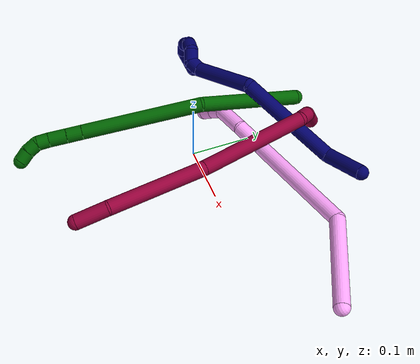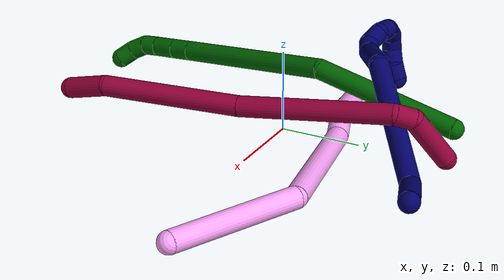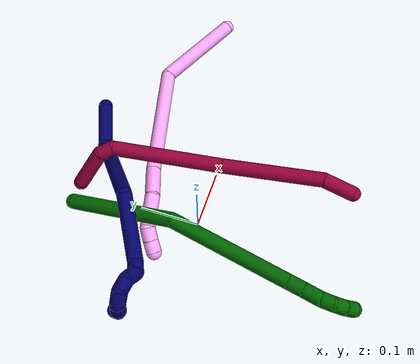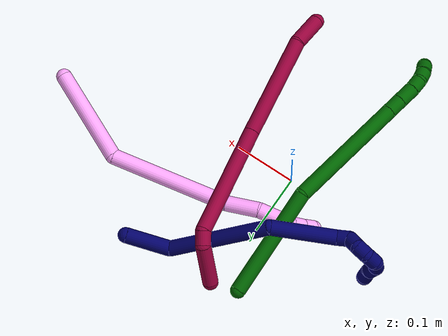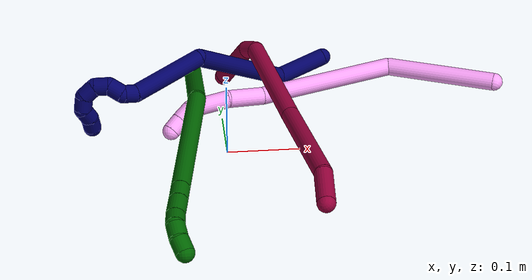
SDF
<sdf version="1.7">
 <world name="default">
  <model name="4">
   <static>0</static>
   <link name="4">
    <collision name="collision-cylinder-e_1_1_4">
     <pose>-0.07615 0.01696 0.007076 -1.17552 -1.33399 0.966332</pose>
     <geometry><cylinder><radius>0.0125</radius><length>0.156672</length></cylinder></geometry>
     <surface>
      <friction><ode><mu>1.16</mu><mu2>1.16</mu2><slip1>0</slip1><slip2>0</slip2></ode></friction>
      <contact><ode><kp>1e+06</kp><kd>1</kd><max_vel>0</max_vel><min_depth>0.001</min_depth></ode></contact>
     </surface>
    </collision>
    <visual name="visual-cylinder-e_1_1_4">
     <pose>-0.07615 0.01696 0.007076 -1.17552 -1.33399 0.966332</pose>
     <geometry><cylinder><radius>0.0125</radius><length>0.156672</length></cylinder></geometry>
     <material><ambient>1 0.65098 0.996078 1</ambient></material>
    </visual>
    <collision name="collision-cylinder-e_2_4_5">
     <pose>-0.237279 0.024224 -0.02999 2.92536 -1.082 -2.78412</pose>
     <geometry><cylinder><radius>0.0125</radius><length>0.1925</length></cylinder></geometry>
     <surface>
      <friction><ode><mu>1.16</mu><mu2>1.16</mu2><slip1>0</slip1><slip2>0</slip2></ode></friction>
      <contact><ode><kp>1e+06</kp><kd>1</kd><max_vel>0</max_vel><min_depth>0.001</min_depth></ode></contact>
     </surface>
    </collision>
    <visual name="visual-cylinder-e_2_4_5">
     <pose>-0.237279 0.024224 -0.02999 2.92536 -1.082 -2.78412</pose>
     <geometry><cylinder><radius>0.0125</radius><length>0.1925</length></cylinder></geometry>
     <material><ambient>1 0.65098 0.996078 1</ambient></material>
    </visual>
    <collision name="collision-cylinder-e_3_5_6">
     <pose>-0.344829 0.005333 -0.085193 2.44805 -1.00346 -1.97656</pose>
     <geometry><cylinder><radius>0.0125</radius><length>0.053527</length></cylinder></geometry>
     <surface>
      <friction><ode><mu>1.16</mu><mu2>1.16</mu2><slip1>0</slip1><slip2>0</slip2></ode></friction>
      <contact><ode><kp>1e+06</kp><kd>1</kd><max_vel>0</max_vel><min_depth>0.001</min_depth></ode></contact>
     </surface>
    </collision>
    <visual name="visual-cylinder-e_3_5_6">
     <pose>-0.344829 0.005333 -0.085193 2.44805 -1.00346 -1.97656</pose>
     <geometry><cylinder><radius>0.0125</radius><length>0.053527</length></cylinder></geometry>
     <material><ambient>1 0.65098 0.996078 1</ambient></material>
    </visual>
    <collision name="collision-cylinder-e_4_6_7">
     <pose>-0.391847 -0.005667 -0.10947 3.00586 -1.0713 -2.91355</pose>
     <geometry><cylinder><radius>0.0125</radius><length>0.055702</length></cylinder></geometry>
     <surface>
      <friction><ode><mu>1.16</mu><mu2>1.16</mu2><slip1>0</slip1><slip2>0</slip2></ode></friction>
      <contact><ode><kp>1e+06</kp><kd>1</kd><max_vel>0</max_vel><min_depth>0.001</min_depth></ode></contact>
     </surface>
    </collision>
    <visual name="visual-cylinder-e_4_6_7">
     <pose>-0.391847 -0.005667 -0.10947 3.00586 -1.0713 -2.91355</pose>
     <geometry><cylinder><radius>0.0125</radius><length>0.055702</length></cylinder></geometry>
     <material><ambient>1 0.65098 0.996078 1</ambient></material>
    </visual>
    <collision name="collision-cylinder-e_5_7_8">
     <pose>-0.421782 -0.006266 -0.131853 -3.01074 -0.535633 2.67285</pose>
     <geometry><cylinder><radius>0.0125</radius><length>0.021501</length></cylinder></geometry>
     <surface>
      <friction><ode><mu>1.16</mu><mu2>1.16</mu2><slip1>0</slip1><slip2>0</slip2></ode></friction>
      <contact><ode><kp>1e+06</kp><kd>1</kd><max_vel>0</max_vel><min_depth>0.001</min_depth></ode></contact>
     </surface>
    </collision>
    <visual name="visual-cylinder-e_5_7_8">
     <pose>-0.421782 -0.006266 -0.131853 -3.01074 -0.535633 2.67285</pose>
     <geometry><cylinder><radius>0.0125</radius><length>0.021501</length></cylinder></geometry>
     <material><ambient>1 0.65098 0.996078 1</ambient></material>
    </visual>
    <collision name="collision-cylinder-e_6_8_2">
     <pose>-0.431823 -0.004136 -0.149929 -3.0383 -0.470263 2.71657</pose>
     <geometry><cylinder><radius>0.0125</radius><length>0.020098</length></cylinder></geometry>
     <surface>
      <friction><ode><mu>1.16</mu><mu2>1.16</mu2><slip1>0</slip1><slip2>0</slip2></ode></friction>
      <contact><ode><kp>1e+06</kp><kd>1</kd><max_vel>0</max_vel><min_depth>0.001</min_depth></ode></contact>
     </surface>
    </collision>
    <visual name="visual-cylinder-e_6_8_2">
     <pose>-0.431823 -0.004136 -0.149929 -3.0383 -0.470263 2.71657</pose>
     <geometry><cylinder><radius>0.0125</radius><length>0.020098</length></cylinder></geometry>
     <material><ambient>1 0.65098 0.996078 1</ambient></material>
    </visual>
    <collision name="collision-sphere-2">
     <pose>-0.436376 -0.003212 -0.15884 0 -0 0</pose>
     <geometry><sphere><radius>0.0125</radius></sphere></geometry>
     <surface>
      <friction><ode><mu>1.16</mu><mu2>1.16</mu2><slip1>0</slip1><slip2>0</slip2></ode></friction>
      <contact><ode><kp>1e+06</kp><kd>1</kd><max_vel>0</max_vel><min_depth>0.001</min_depth></ode></contact>
     </surface>
    </collision>
    <visual name="visual-sphere-2">
     <pose>-0.436376 -0.003212 -0.15884 0 -0 0</pose>
     <geometry><sphere><radius>0.0125</radius></sphere></geometry>
     <material><ambient>1 0.65098 0.996078 1</ambient></material>
    </visual>
    <collision name="collision-sphere-4">
     <pose>-0.1523 0.033921 0.014153 0 -0 0</pose>
     <geometry><sphere><radius>0.0125</radius></sphere></geometry>
     <surface>
      <friction><ode><mu>1.16</mu><mu2>1.16</mu2><slip1>0</slip1><slip2>0</slip2></ode></friction>
      <contact><ode><kp>1e+06</kp><kd>1</kd><max_vel>0</max_vel><min_depth>0.001</min_depth></ode></contact>
     </surface>
    </collision>
    <visual name="visual-sphere-4">
     <pose>-0.1523 0.033921 0.014153 0 -0 0</pose>
     <geometry><sphere><radius>0.0125</radius></sphere></geometry>
     <material><ambient>1 0.65098 0.996078 1</ambient></material>
    </visual>
    <collision name="collision-sphere-1">
     <geometry><sphere><radius>0.0125</radius></sphere></geometry>
     <surface>
      <friction><ode><mu>1.16</mu><mu2>1.16</mu2><slip1>0</slip1><slip2>0</slip2></ode></friction>
      <contact><ode><kp>1e+06</kp><kd>1</kd><max_vel>0</max_vel><min_depth>0.001</min_depth></ode></contact>
     </surface>
    </collision>
    <visual name="visual-sphere-1">
     <geometry><sphere><radius>0.0125</radius></sphere></geometry>
     <material><ambient>1 0.65098 0.996078 1</ambient></material>
    </visual>
    <collision name="collision-sphere-8">
     <pose>-0.427269 -0.005059 -0.141019 0 -0 0</pose>
     <geometry><sphere><radius>0.0125</radius></sphere></geometry>
     <surface>
      <friction><ode><mu>1.16</mu><mu2>1.16</mu2><slip1>0</slip1><slip2>0</slip2></ode></friction>
      <contact><ode><kp>1e+06</kp><kd>1</kd><max_vel>0</max_vel><min_depth>0.001</min_depth></ode></contact>
     </surface>
    </collision>
    <visual name="visual-sphere-8">
     <pose>-0.427269 -0.005059 -0.141019 0 -0 0</pose>
     <geometry><sphere><radius>0.0125</radius></sphere></geometry>
     <material><ambient>1 0.65098 0.996078 1</ambient></material>
    </visual>
    <collision name="collision-sphere-5">
     <pose>-0.322258 0.014527 -0.074133 0 -0 0</pose>
     <geometry><sphere><radius>0.0125</radius></sphere></geometry>
     <surface>
      <friction><ode><mu>1.16</mu><mu2>1.16</mu2><slip1>0</slip1><slip2>0</slip2></ode></friction>
      <contact><ode><kp>1e+06</kp><kd>1</kd><max_vel>0</max_vel><min_depth>0.001</min_depth></ode></contact>
     </surface>
    </collision>
    <visual name="visual-sphere-5">
     <pose>-0.322258 0.014527 -0.074133 0 -0 0</pose>
     <geometry><sphere><radius>0.0125</radius></sphere></geometry>
     <material><ambient>1 0.65098 0.996078 1</ambient></material>
    </visual>
    <collision name="collision-sphere-6">
     <pose>-0.367399 -0.003862 -0.096253 0 -0 0</pose>
     <geometry><sphere><radius>0.0125</radius></sphere></geometry>
     <surface>
      <friction><ode><mu>1.16</mu><mu2>1.16</mu2><slip1>0</slip1><slip2>0</slip2></ode></friction>
      <contact><ode><kp>1e+06</kp><kd>1</kd><max_vel>0</max_vel><min_depth>0.001</min_depth></ode></contact>
     </surface>
    </collision>
    <visual name="visual-sphere-6">
     <pose>-0.367399 -0.003862 -0.096253 0 -0 0</pose>
     <geometry><sphere><radius>0.0125</radius></sphere></geometry>
     <material><ambient>1 0.65098 0.996078 1</ambient></material>
    </visual>
    <collision name="collision-sphere-7">
     <pose>-0.416296 -0.007472 -0.122688 0 -0 0</pose>
     <geometry><sphere><radius>0.0125</radius></sphere></geometry>
     <surface>
      <friction><ode><mu>1.16</mu><mu2>1.16</mu2><slip1>0</slip1><slip2>0</slip2></ode></friction>
      <contact><ode><kp>1e+06</kp><kd>1</kd><max_vel>0</max_vel><min_depth>0.001</min_depth></ode></contact>
     </surface>
    </collision>
    <visual name="visual-sphere-7">
     <pose>-0.416296 -0.007472 -0.122688 0 -0 0</pose>
     <geometry><sphere><radius>0.0125</radius></sphere></geometry>
     <material><ambient>1 0.65098 0.996078 1</ambient></material>
    </visual>
    <inertial>
     <pose>-0.231277 0.014144 -0.042341 0 -0 0</pose>
     <mass>0.5</mass>
     <inertia>
      <ixx>-0.000313</ixx>
      <ixy>0</ixy>
      <ixz>0</ixz>
      <iyy>0.00089</iyy>
      <iyz>0</iyz>
      <izz>0.000861</izz>
     </inertia>
    </inertial>
   </link>
   <pose>0.387161 0.071746 0.052678 -0.921984 0.118481 -0.233867</pose>
  </model>
  <model name="6">
   <static>0</static>
   <link name="6">
    <collision name="collision-cylinder-e_1_1_4">
     <pose>0.000366 -0.087559 -0.021463 1.81118 0.004055 0.005168</pose>
     <geometry><cylinder><radius>0.0125</radius><length>0.180304</length></cylinder></geometry>
     <surface>
      <friction><ode><mu>1.16</mu><mu2>1.16</mu2><slip1>0</slip1><slip2>0</slip2></ode></friction>
      <contact><ode><kp>1e+06</kp><kd>1</kd><max_vel>0</max_vel><min_depth>0.001</min_depth></ode></contact>
     </surface>
    </collision>
    <visual name="visual-cylinder-e_1_1_4">
     <pose>0.000366 -0.087559 -0.021463 1.81118 0.004055 0.005168</pose>
     <geometry><cylinder><radius>0.0125</radius><length>0.180304</length></cylinder></geometry>
     <material><ambient>0 0.392157 0.003922 1</ambient></material>
    </visual>
    <collision name="collision-cylinder-e_2_4_5">
     <pose>-0.013832 -0.258174 -0.099459 2.16843 -0.143944 -0.270904</pose>
     <geometry><cylinder><radius>0.0125</radius><length>0.20304</length></cylinder></geometry>
     <surface>
      <friction><ode><mu>1.16</mu><mu2>1.16</mu2><slip1>0</slip1><slip2>0</slip2></ode></friction>
      <contact><ode><kp>1e+06</kp><kd>1</kd><max_vel>0</max_vel><min_depth>0.001</min_depth></ode></contact>
     </surface>
    </collision>
    <visual name="visual-cylinder-e_2_4_5">
     <pose>-0.013832 -0.258174 -0.099459 2.16843 -0.143944 -0.270904</pose>
     <geometry><cylinder><radius>0.0125</radius><length>0.20304</length></cylinder></geometry>
     <material><ambient>0 0.392157 0.003922 1</ambient></material>
    </visual>
    <collision name="collision-cylinder-e_3_5_6">
     <pose>-0.030198 -0.351897 -0.163282 2.17031 -0.138681 -0.261672</pose>
     <geometry><cylinder><radius>0.0125</radius><length>0.026091</length></cylinder></geometry>
     <surface>
      <friction><ode><mu>1.16</mu><mu2>1.16</mu2><slip1>0</slip1><slip2>0</slip2></ode></friction>
      <contact><ode><kp>1e+06</kp><kd>1</kd><max_vel>0</max_vel><min_depth>0.001</min_depth></ode></contact>
     </surface>
    </collision>
    <visual name="visual-cylinder-e_3_5_6">
     <pose>-0.030198 -0.351897 -0.163282 2.17031 -0.138681 -0.261672</pose>
     <geometry><cylinder><radius>0.0125</radius><length>0.026091</length></cylinder></geometry>
     <material><ambient>0 0.392157 0.003922 1</ambient></material>
    </visual>
    <collision name="collision-cylinder-e_4_6_7">
     <pose>-0.034244 -0.374867 -0.179028 2.17293 -0.149142 -0.28211</pose>
     <geometry><cylinder><radius>0.0125</radius><length>0.030194</length></cylinder></geometry>
     <surface>
      <friction><ode><mu>1.16</mu><mu2>1.16</mu2><slip1>0</slip1><slip2>0</slip2></ode></friction>
      <contact><ode><kp>1e+06</kp><kd>1</kd><max_vel>0</max_vel><min_depth>0.001</min_depth></ode></contact>
     </surface>
    </collision>
    <visual name="visual-cylinder-e_4_6_7">
     <pose>-0.034244 -0.374867 -0.179028 2.17293 -0.149142 -0.28211</pose>
     <geometry><cylinder><radius>0.0125</radius><length>0.030194</length></cylinder></geometry>
     <material><ambient>0 0.392157 0.003922 1</ambient></material>
    </visual>
    <collision name="collision-cylinder-e_5_7_8">
     <pose>-0.03684 -0.395615 -0.192869 2.13847 -0.035187 -0.064156</pose>
     <geometry><cylinder><radius>0.0125</radius><length>0.020043</length></cylinder></geometry>
     <surface>
      <friction><ode><mu>1.16</mu><mu2>1.16</mu2><slip1>0</slip1><slip2>0</slip2></ode></friction>
      <contact><ode><kp>1e+06</kp><kd>1</kd><max_vel>0</max_vel><min_depth>0.001</min_depth></ode></contact>
     </surface>
    </collision>
    <visual name="visual-cylinder-e_5_7_8">
     <pose>-0.03684 -0.395615 -0.192869 2.13847 -0.035187 -0.064156</pose>
     <geometry><cylinder><radius>0.0125</radius><length>0.020043</length></cylinder></geometry>
     <material><ambient>0 0.392157 0.003922 1</ambient></material>
    </visual>
    <collision name="collision-cylinder-e_6_8_9">
     <pose>-0.035409 -0.409781 -0.206298 2.52329 0.178765 0.547128</pose>
     <geometry><cylinder><radius>0.0125</radius><length>0.020062</length></cylinder></geometry>
     <surface>
      <friction><ode><mu>1.16</mu><mu2>1.16</mu2><slip1>0</slip1><slip2>0</slip2></ode></friction>
      <contact><ode><kp>1e+06</kp><kd>1</kd><max_vel>0</max_vel><min_depth>0.001</min_depth></ode></contact>
     </surface>
    </collision>
    <visual name="visual-cylinder-e_6_8_9">
     <pose>-0.035409 -0.409781 -0.206298 2.52329 0.178765 0.547128</pose>
     <geometry><cylinder><radius>0.0125</radius><length>0.020062</length></cylinder></geometry>
     <material><ambient>0 0.392157 0.003922 1</ambient></material>
    </visual>
    <collision name="collision-cylinder-e_7_9_2">
     <pose>-0.030156 -0.419463 -0.222999 2.71265 0.349451 1.36213</pose>
     <geometry><cylinder><radius>0.0125</radius><length>0.020267</length></cylinder></geometry>
     <surface>
      <friction><ode><mu>1.16</mu><mu2>1.16</mu2><slip1>0</slip1><slip2>0</slip2></ode></friction>
      <contact><ode><kp>1e+06</kp><kd>1</kd><max_vel>0</max_vel><min_depth>0.001</min_depth></ode></contact>
     </surface>
    </collision>
    <visual name="visual-cylinder-e_7_9_2">
     <pose>-0.030156 -0.419463 -0.222999 2.71265 0.349451 1.36213</pose>
     <geometry><cylinder><radius>0.0125</radius><length>0.020267</length></cylinder></geometry>
     <material><ambient>0 0.392157 0.003922 1</ambient></material>
    </visual>
    <collision name="collision-sphere-2">
     <pose>-0.026687 -0.423423 -0.231658 0 -0 0</pose>
     <geometry><sphere><radius>0.0125</radius></sphere></geometry>
     <surface>
      <friction><ode><mu>1.16</mu><mu2>1.16</mu2><slip1>0</slip1><slip2>0</slip2></ode></friction>
      <contact><ode><kp>1e+06</kp><kd>1</kd><max_vel>0</max_vel><min_depth>0.001</min_depth></ode></contact>
     </surface>
    </collision>
    <visual name="visual-sphere-2">
     <pose>-0.026687 -0.423423 -0.231658 0 -0 0</pose>
     <geometry><sphere><radius>0.0125</radius></sphere></geometry>
     <material><ambient>0 0.392157 0.003922 1</ambient></material>
    </visual>
    <collision name="collision-sphere-9">
     <pose>-0.033625 -0.415503 -0.214341 0 -0 0</pose>
     <geometry><sphere><radius>0.0125</radius></sphere></geometry>
     <surface>
      <friction><ode><mu>1.16</mu><mu2>1.16</mu2><slip1>0</slip1><slip2>0</slip2></ode></friction>
      <contact><ode><kp>1e+06</kp><kd>1</kd><max_vel>0</max_vel><min_depth>0.001</min_depth></ode></contact>
     </surface>
    </collision>
    <visual name="visual-sphere-9">
     <pose>-0.033625 -0.415503 -0.214341 0 -0 0</pose>
     <geometry><sphere><radius>0.0125</radius></sphere></geometry>
     <material><ambient>0 0.392157 0.003922 1</ambient></material>
    </visual>
    <collision name="collision-sphere-4">
     <pose>0.000731 -0.175118 -0.042925 0 -0 0</pose>
     <geometry><sphere><radius>0.0125</radius></sphere></geometry>
     <surface>
      <friction><ode><mu>1.16</mu><mu2>1.16</mu2><slip1>0</slip1><slip2>0</slip2></ode></friction>
      <contact><ode><kp>1e+06</kp><kd>1</kd><max_vel>0</max_vel><min_depth>0.001</min_depth></ode></contact>
     </surface>
    </collision>
    <visual name="visual-sphere-4">
     <pose>0.000731 -0.175118 -0.042925 0 -0 0</pose>
     <geometry><sphere><radius>0.0125</radius></sphere></geometry>
     <material><ambient>0 0.392157 0.003922 1</ambient></material>
    </visual>
    <collision name="collision-sphere-1">
     <geometry><sphere><radius>0.0125</radius></sphere></geometry>
     <surface>
      <friction><ode><mu>1.16</mu><mu2>1.16</mu2><slip1>0</slip1><slip2>0</slip2></ode></friction>
      <contact><ode><kp>1e+06</kp><kd>1</kd><max_vel>0</max_vel><min_depth>0.001</min_depth></ode></contact>
     </surface>
    </collision>
    <visual name="visual-sphere-1">
     <geometry><sphere><radius>0.0125</radius></sphere></geometry>
     <material><ambient>0 0.392157 0.003922 1</ambient></material>
    </visual>
    <collision name="collision-sphere-8">
     <pose>-0.037193 -0.40406 -0.198254 0 -0 0</pose>
     <geometry><sphere><radius>0.0125</radius></sphere></geometry>
     <surface>
      <friction><ode><mu>1.16</mu><mu2>1.16</mu2><slip1>0</slip1><slip2>0</slip2></ode></friction>
      <contact><ode><kp>1e+06</kp><kd>1</kd><max_vel>0</max_vel><min_depth>0.001</min_depth></ode></contact>
     </surface>
    </collision>
    <visual name="visual-sphere-8">
     <pose>-0.037193 -0.40406 -0.198254 0 -0 0</pose>
     <geometry><sphere><radius>0.0125</radius></sphere></geometry>
     <material><ambient>0 0.392157 0.003922 1</ambient></material>
    </visual>
    <collision name="collision-sphere-5">
     <pose>-0.028394 -0.34123 -0.155992 0 -0 0</pose>
     <geometry><sphere><radius>0.0125</radius></sphere></geometry>
     <surface>
      <friction><ode><mu>1.16</mu><mu2>1.16</mu2><slip1>0</slip1><slip2>0</slip2></ode></friction>
      <contact><ode><kp>1e+06</kp><kd>1</kd><max_vel>0</max_vel><min_depth>0.001</min_depth></ode></contact>
     </surface>
    </collision>
    <visual name="visual-sphere-5">
     <pose>-0.028394 -0.34123 -0.155992 0 -0 0</pose>
     <geometry><sphere><radius>0.0125</radius></sphere></geometry>
     <material><ambient>0 0.392157 0.003922 1</ambient></material>
    </visual>
    <collision name="collision-sphere-6">
     <pose>-0.032001 -0.362564 -0.170572 0 -0 0</pose>
     <geometry><sphere><radius>0.0125</radius></sphere></geometry>
     <surface>
      <friction><ode><mu>1.16</mu><mu2>1.16</mu2><slip1>0</slip1><slip2>0</slip2></ode></friction>
      <contact><ode><kp>1e+06</kp><kd>1</kd><max_vel>0</max_vel><min_depth>0.001</min_depth></ode></contact>
     </surface>
    </collision>
    <visual name="visual-sphere-6">
     <pose>-0.032001 -0.362564 -0.170572 0 -0 0</pose>
     <geometry><sphere><radius>0.0125</radius></sphere></geometry>
     <material><ambient>0 0.392157 0.003922 1</ambient></material>
    </visual>
    <collision name="collision-sphere-7">
     <pose>-0.036488 -0.387171 -0.187484 0 -0 0</pose>
     <geometry><sphere><radius>0.0125</radius></sphere></geometry>
     <surface>
      <friction><ode><mu>1.16</mu><mu2>1.16</mu2><slip1>0</slip1><slip2>0</slip2></ode></friction>
      <contact><ode><kp>1e+06</kp><kd>1</kd><max_vel>0</max_vel><min_depth>0.001</min_depth></ode></contact>
     </surface>
    </collision>
    <visual name="visual-sphere-7">
     <pose>-0.036488 -0.387171 -0.187484 0 -0 0</pose>
     <geometry><sphere><radius>0.0125</radius></sphere></geometry>
     <material><ambient>0 0.392157 0.003922 1</ambient></material>
    </visual>
    <inertial>
     <pose>-0.013249 -0.226716 -0.092507 0 -0 0</pose>
     <mass>0.5</mass>
     <inertia>
      <ixx>0.000991</ixx>
      <ixy>0</ixy>
      <ixz>0</ixz>
      <iyy>-0.0007</iyy>
      <iyz>0</iyz>
      <izz>0.001147</izz>
     </inertia>
    </inertial>
   </link>
   <pose>-0.036295 0.204873 0.028383 -0.47583 0.002937 -0.019786</pose>
  </model>
  <model name="7">
   <static>0</static>
   <link name="7">
    <collision name="collision-cylinder-e_1_1_4">
     <pose>-0.005622 -0.014572 0.033212 0.413464 -0.153775 -0.032312</pose>
     <geometry><cylinder><radius>0.0125</radius><length>0.073404</length></cylinder></geometry>
     <surface>
      <friction><ode><mu>1.16</mu><mu2>1.16</mu2><slip1>0</slip1><slip2>0</slip2></ode></friction>
      <contact><ode><kp>1e+06</kp><kd>1</kd><max_vel>0</max_vel><min_depth>0.001</min_depth></ode></contact>
     </surface>
    </collision>
    <visual name="visual-cylinder-e_1_1_4">
     <pose>-0.005622 -0.014572 0.033212 0.413464 -0.153775 -0.032312</pose>
     <geometry><cylinder><radius>0.0125</radius><length>0.073404</length></cylinder></geometry>
     <material><ambient>0.003922 0 0.403922 1</ambient></material>
    </visual>
    <collision name="collision-cylinder-e_2_4_5">
     <pose>-0.045889 -0.001847 0.142103 -0.346174 -0.406641 0.072061</pose>
     <geometry><cylinder><radius>0.0125</radius><length>0.175187</length></cylinder></geometry>
     <surface>
      <friction><ode><mu>1.16</mu><mu2>1.16</mu2><slip1>0</slip1><slip2>0</slip2></ode></friction>
      <contact><ode><kp>1e+06</kp><kd>1</kd><max_vel>0</max_vel><min_depth>0.001</min_depth></ode></contact>
     </surface>
    </collision>
    <visual name="visual-cylinder-e_2_4_5">
     <pose>-0.045889 -0.001847 0.142103 -0.346174 -0.406641 0.072061</pose>
     <geometry><cylinder><radius>0.0125</radius><length>0.175187</length></cylinder></geometry>
     <material><ambient>0.003922 0 0.403922 1</ambient></material>
    </visual>
    <collision name="collision-cylinder-e_3_5_6">
     <pose>-0.082587 0.008826 0.269166 0.31288 -0.037986 -0.005992</pose>
     <geometry><cylinder><radius>0.0125</radius><length>0.108091</length></cylinder></geometry>
     <surface>
      <friction><ode><mu>1.16</mu><mu2>1.16</mu2><slip1>0</slip1><slip2>0</slip2></ode></friction>
      <contact><ode><kp>1e+06</kp><kd>1</kd><max_vel>0</max_vel><min_depth>0.001</min_depth></ode></contact>
     </surface>
    </collision>
    <visual name="visual-cylinder-e_3_5_6">
     <pose>-0.082587 0.008826 0.269166 0.31288 -0.037986 -0.005992</pose>
     <geometry><cylinder><radius>0.0125</radius><length>0.108091</length></cylinder></geometry>
     <material><ambient>0.003922 0 0.403922 1</ambient></material>
    </visual>
    <collision name="collision-cylinder-e_4_6_7">
     <pose>-0.088626 -0.008144 0.329893 0.03716 -0.403094 -0.007593</pose>
     <geometry><cylinder><radius>0.0125</radius><length>0.020329</length></cylinder></geometry>
     <surface>
      <friction><ode><mu>1.16</mu><mu2>1.16</mu2><slip1>0</slip1><slip2>0</slip2></ode></friction>
      <contact><ode><kp>1e+06</kp><kd>1</kd><max_vel>0</max_vel><min_depth>0.001</min_depth></ode></contact>
     </surface>
    </collision>
    <visual name="visual-cylinder-e_4_6_7">
     <pose>-0.088626 -0.008144 0.329893 0.03716 -0.403094 -0.007593</pose>
     <geometry><cylinder><radius>0.0125</radius><length>0.020329</length></cylinder></geometry>
     <material><ambient>0.003922 0 0.403922 1</ambient></material>
    </visual>
    <collision name="collision-cylinder-e_5_7_8">
     <pose>-0.102416 -0.010295 0.343279 0.419641 -1.14664 -0.273279</pose>
     <geometry><cylinder><radius>0.0125</radius><length>0.021511</length></cylinder></geometry>
     <surface>
      <friction><ode><mu>1.16</mu><mu2>1.16</mu2><slip1>0</slip1><slip2>0</slip2></ode></friction>
      <contact><ode><kp>1e+06</kp><kd>1</kd><max_vel>0</max_vel><min_depth>0.001</min_depth></ode></contact>
     </surface>
    </collision>
    <visual name="visual-cylinder-e_5_7_8">
     <pose>-0.102416 -0.010295 0.343279 0.419641 -1.14664 -0.273279</pose>
     <geometry><cylinder><radius>0.0125</radius><length>0.021511</length></cylinder></geometry>
     <material><ambient>0.003922 0 0.403922 1</ambient></material>
    </visual>
    <collision name="collision-cylinder-e_6_8_9">
     <pose>-0.117723 -0.017759 0.353509 0.741003 -0.580841 -0.231152</pose>
     <geometry><cylinder><radius>0.0125</radius><length>0.020063</length></cylinder></geometry>
     <surface>
      <friction><ode><mu>1.16</mu><mu2>1.16</mu2><slip1>0</slip1><slip2>0</slip2></ode></friction>
      <contact><ode><kp>1e+06</kp><kd>1</kd><max_vel>0</max_vel><min_depth>0.001</min_depth></ode></contact>
     </surface>
    </collision>
    <visual name="visual-cylinder-e_6_8_9">
     <pose>-0.117723 -0.017759 0.353509 0.741003 -0.580841 -0.231152</pose>
     <geometry><cylinder><radius>0.0125</radius><length>0.020063</length></cylinder></geometry>
     <material><ambient>0.003922 0 0.403922 1</ambient></material>
    </visual>
    <collision name="collision-cylinder-e_7_9_10">
     <pose>-0.122564 -0.031644 0.366008 0.916185 0.063926 0.031528</pose>
     <geometry><cylinder><radius>0.0125</radius><length>0.020775</length></cylinder></geometry>
     <surface>
      <friction><ode><mu>1.16</mu><mu2>1.16</mu2><slip1>0</slip1><slip2>0</slip2></ode></friction>
      <contact><ode><kp>1e+06</kp><kd>1</kd><max_vel>0</max_vel><min_depth>0.001</min_depth></ode></contact>
     </surface>
    </collision>
    <visual name="visual-cylinder-e_7_9_10">
     <pose>-0.122564 -0.031644 0.366008 0.916185 0.063926 0.031528</pose>
     <geometry><cylinder><radius>0.0125</radius><length>0.020775</length></cylinder></geometry>
     <material><ambient>0.003922 0 0.403922 1</ambient></material>
    </visual>
    <collision name="collision-cylinder-e_8_10_11">
     <pose>-0.115993 -0.047991 0.373653 1.40808 0.622391 0.533287</pose>
     <geometry><cylinder><radius>0.0125</radius><length>0.020267</length></cylinder></geometry>
     <surface>
      <friction><ode><mu>1.16</mu><mu2>1.16</mu2><slip1>0</slip1><slip2>0</slip2></ode></friction>
      <contact><ode><kp>1e+06</kp><kd>1</kd><max_vel>0</max_vel><min_depth>0.001</min_depth></ode></contact>
     </surface>
    </collision>
    <visual name="visual-cylinder-e_8_10_11">
     <pose>-0.115993 -0.047991 0.373653 1.40808 0.622391 0.533287</pose>
     <geometry><cylinder><radius>0.0125</radius><length>0.020267</length></cylinder></geometry>
     <material><ambient>0.003922 0 0.403922 1</ambient></material>
    </visual>
    <collision name="collision-cylinder-e_9_11_12">
     <pose>-0.10402 -0.062335 0.369893 2.25707 0.646328 1.23111</pose>
     <geometry><cylinder><radius>0.0125</radius><length>0.020141</length></cylinder></geometry>
     <surface>
      <friction><ode><mu>1.16</mu><mu2>1.16</mu2><slip1>0</slip1><slip2>0</slip2></ode></friction>
      <contact><ode><kp>1e+06</kp><kd>1</kd><max_vel>0</max_vel><min_depth>0.001</min_depth></ode></contact>
     </surface>
    </collision>
    <visual name="visual-cylinder-e_9_11_12">
     <pose>-0.10402 -0.062335 0.369893 2.25707 0.646328 1.23111</pose>
     <geometry><cylinder><radius>0.0125</radius><length>0.020141</length></cylinder></geometry>
     <material><ambient>0.003922 0 0.403922 1</ambient></material>
    </visual>
    <collision name="collision-cylinder-e_10_12_2">
     <pose>-0.092925 -0.076779 0.361732 1.92769 0.520376 0.732211</pose>
     <geometry><cylinder><radius>0.0125</radius><length>0.020234</length></cylinder></geometry>
     <surface>
      <friction><ode><mu>1.16</mu><mu2>1.16</mu2><slip1>0</slip1><slip2>0</slip2></ode></friction>
      <contact><ode><kp>1e+06</kp><kd>1</kd><max_vel>0</max_vel><min_depth>0.001</min_depth></ode></contact>
     </surface>
    </collision>
    <visual name="visual-cylinder-e_10_12_2">
     <pose>-0.092925 -0.076779 0.361732 1.92769 0.520376 0.732211</pose>
     <geometry><cylinder><radius>0.0125</radius><length>0.020234</length></cylinder></geometry>
     <material><ambient>0.003922 0 0.403922 1</ambient></material>
    </visual>
    <collision name="collision-sphere-2">
     <pose>-0.087895 -0.085004 0.358665 0 -0 0</pose>
     <geometry><sphere><radius>0.0125</radius></sphere></geometry>
     <surface>
      <friction><ode><mu>1.16</mu><mu2>1.16</mu2><slip1>0</slip1><slip2>0</slip2></ode></friction>
      <contact><ode><kp>1e+06</kp><kd>1</kd><max_vel>0</max_vel><min_depth>0.001</min_depth></ode></contact>
     </surface>
    </collision>
    <visual name="visual-sphere-2">
     <pose>-0.087895 -0.085004 0.358665 0 -0 0</pose>
     <geometry><sphere><radius>0.0125</radius></sphere></geometry>
     <material><ambient>0.003922 0 0.403922 1</ambient></material>
    </visual>
    <collision name="collision-sphere-12">
     <pose>-0.097955 -0.068554 0.364799 0 -0 0</pose>
     <geometry><sphere><radius>0.0125</radius></sphere></geometry>
     <surface>
      <friction><ode><mu>1.16</mu><mu2>1.16</mu2><slip1>0</slip1><slip2>0</slip2></ode></friction>
      <contact><ode><kp>1e+06</kp><kd>1</kd><max_vel>0</max_vel><min_depth>0.001</min_depth></ode></contact>
     </surface>
    </collision>
    <visual name="visual-sphere-12">
     <pose>-0.097955 -0.068554 0.364799 0 -0 0</pose>
     <geometry><sphere><radius>0.0125</radius></sphere></geometry>
     <material><ambient>0.003922 0 0.403922 1</ambient></material>
    </visual>
    <collision name="collision-sphere-11">
     <pose>-0.110085 -0.056116 0.374987 0 -0 0</pose>
     <geometry><sphere><radius>0.0125</radius></sphere></geometry>
     <surface>
      <friction><ode><mu>1.16</mu><mu2>1.16</mu2><slip1>0</slip1><slip2>0</slip2></ode></friction>
      <contact><ode><kp>1e+06</kp><kd>1</kd><max_vel>0</max_vel><min_depth>0.001</min_depth></ode></contact>
     </surface>
    </collision>
    <visual name="visual-sphere-11">
     <pose>-0.110085 -0.056116 0.374987 0 -0 0</pose>
     <geometry><sphere><radius>0.0125</radius></sphere></geometry>
     <material><ambient>0.003922 0 0.403922 1</ambient></material>
    </visual>
    <collision name="collision-sphere-10">
     <pose>-0.1219 -0.039867 0.372319 0 -0 0</pose>
     <geometry><sphere><radius>0.0125</radius></sphere></geometry>
     <surface>
      <friction><ode><mu>1.16</mu><mu2>1.16</mu2><slip1>0</slip1><slip2>0</slip2></ode></friction>
      <contact><ode><kp>1e+06</kp><kd>1</kd><max_vel>0</max_vel><min_depth>0.001</min_depth></ode></contact>
     </surface>
    </collision>
    <visual name="visual-sphere-10">
     <pose>-0.1219 -0.039867 0.372319 0 -0 0</pose>
     <geometry><sphere><radius>0.0125</radius></sphere></geometry>
     <material><ambient>0.003922 0 0.403922 1</ambient></material>
    </visual>
    <collision name="collision-sphere-9">
     <pose>-0.123227 -0.02342 0.359696 0 -0 0</pose>
     <geometry><sphere><radius>0.0125</radius></sphere></geometry>
     <surface>
      <friction><ode><mu>1.16</mu><mu2>1.16</mu2><slip1>0</slip1><slip2>0</slip2></ode></friction>
      <contact><ode><kp>1e+06</kp><kd>1</kd><max_vel>0</max_vel><min_depth>0.001</min_depth></ode></contact>
     </surface>
    </collision>
    <visual name="visual-sphere-9">
     <pose>-0.123227 -0.02342 0.359696 0 -0 0</pose>
     <geometry><sphere><radius>0.0125</radius></sphere></geometry>
     <material><ambient>0.003922 0 0.403922 1</ambient></material>
    </visual>
    <collision name="collision-sphere-4">
     <pose>-0.011243 -0.029144 0.066425 0 -0 0</pose>
     <geometry><sphere><radius>0.0125</radius></sphere></geometry>
     <surface>
      <friction><ode><mu>1.16</mu><mu2>1.16</mu2><slip1>0</slip1><slip2>0</slip2></ode></friction>
      <contact><ode><kp>1e+06</kp><kd>1</kd><max_vel>0</max_vel><min_depth>0.001</min_depth></ode></contact>
     </surface>
    </collision>
    <visual name="visual-sphere-4">
     <pose>-0.011243 -0.029144 0.066425 0 -0 0</pose>
     <geometry><sphere><radius>0.0125</radius></sphere></geometry>
     <material><ambient>0.003922 0 0.403922 1</ambient></material>
    </visual>
    <collision name="collision-sphere-1">
     <geometry><sphere><radius>0.0125</radius></sphere></geometry>
     <surface>
      <friction><ode><mu>1.16</mu><mu2>1.16</mu2><slip1>0</slip1><slip2>0</slip2></ode></friction>
      <contact><ode><kp>1e+06</kp><kd>1</kd><max_vel>0</max_vel><min_depth>0.001</min_depth></ode></contact>
     </surface>
    </collision>
    <visual name="visual-sphere-1">
     <geometry><sphere><radius>0.0125</radius></sphere></geometry>
     <material><ambient>0.003922 0 0.403922 1</ambient></material>
    </visual>
    <collision name="collision-sphere-8">
     <pose>-0.112218 -0.012098 0.347322 0 -0 0</pose>
     <geometry><sphere><radius>0.0125</radius></sphere></geometry>
     <surface>
      <friction><ode><mu>1.16</mu><mu2>1.16</mu2><slip1>0</slip1><slip2>0</slip2></ode></friction>
      <contact><ode><kp>1e+06</kp><kd>1</kd><max_vel>0</max_vel><min_depth>0.001</min_depth></ode></contact>
     </surface>
    </collision>
    <visual name="visual-sphere-8">
     <pose>-0.112218 -0.012098 0.347322 0 -0 0</pose>
     <geometry><sphere><radius>0.0125</radius></sphere></geometry>
     <material><ambient>0.003922 0 0.403922 1</ambient></material>
    </visual>
    <collision name="collision-sphere-5">
     <pose>-0.080534 0.02545 0.217781 0 -0 0</pose>
     <geometry><sphere><radius>0.0125</radius></sphere></geometry>
     <surface>
      <friction><ode><mu>1.16</mu><mu2>1.16</mu2><slip1>0</slip1><slip2>0</slip2></ode></friction>
      <contact><ode><kp>1e+06</kp><kd>1</kd><max_vel>0</max_vel><min_depth>0.001</min_depth></ode></contact>
     </surface>
    </collision>
    <visual name="visual-sphere-5">
     <pose>-0.080534 0.02545 0.217781 0 -0 0</pose>
     <geometry><sphere><radius>0.0125</radius></sphere></geometry>
     <material><ambient>0.003922 0 0.403922 1</ambient></material>
    </visual>
    <collision name="collision-sphere-6">
     <pose>-0.084639 -0.007797 0.32055 0 -0 0</pose>
     <geometry><sphere><radius>0.0125</radius></sphere></geometry>
     <surface>
      <friction><ode><mu>1.16</mu><mu2>1.16</mu2><slip1>0</slip1><slip2>0</slip2></ode></friction>
      <contact><ode><kp>1e+06</kp><kd>1</kd><max_vel>0</max_vel><min_depth>0.001</min_depth></ode></contact>
     </surface>
    </collision>
    <visual name="visual-sphere-6">
     <pose>-0.084639 -0.007797 0.32055 0 -0 0</pose>
     <geometry><sphere><radius>0.0125</radius></sphere></geometry>
     <material><ambient>0.003922 0 0.403922 1</ambient></material>
    </visual>
    <collision name="collision-sphere-7">
     <pose>-0.092614 -0.008491 0.339237 0 -0 0</pose>
     <geometry><sphere><radius>0.0125</radius></sphere></geometry>
     <surface>
      <friction><ode><mu>1.16</mu><mu2>1.16</mu2><slip1>0</slip1><slip2>0</slip2></ode></friction>
      <contact><ode><kp>1e+06</kp><kd>1</kd><max_vel>0</max_vel><min_depth>0.001</min_depth></ode></contact>
     </surface>
    </collision>
    <visual name="visual-sphere-7">
     <pose>-0.092614 -0.008491 0.339237 0 -0 0</pose>
     <geometry><sphere><radius>0.0125</radius></sphere></geometry>
     <material><ambient>0.003922 0 0.403922 1</ambient></material>
    </visual>
    <inertial>
     <pose>-0.065235 -0.011243 0.215111 0 -0 0</pose>
     <mass>0.5</mass>
     <inertia>
      <ixx>0.000592</ixx>
      <ixy>0</ixy>
      <ixz>0</ixz>
      <iyy>0.000598</iyy>
      <iyz>0</iyz>
      <izz>0.00013</izz>
     </inertia>
    </inertial>
   </link>
   <pose>0.160009 0.228647 0.02911 1.61318 0.717728 -0.789294</pose>
  </model>
  <model name="8">
   <static>0</static>
   <link name="8">
    <collision name="collision-cylinder-e_1_1_4">
     <pose>0.028684 0.000676 0.02092 -0.032324 0.940406 -0.016429</pose>
     <geometry><cylinder><radius>0.0125</radius><length>0.071018</length></cylinder></geometry>
     <surface>
      <friction><ode><mu>1.16</mu><mu2>1.16</mu2><slip1>0</slip1><slip2>0</slip2></ode></friction>
      <contact><ode><kp>1e+06</kp><kd>1</kd><max_vel>0</max_vel><min_depth>0.001</min_depth></ode></contact>
     </surface>
    </collision>
    <visual name="visual-cylinder-e_1_1_4">
     <pose>0.028684 0.000676 0.02092 -0.032324 0.940406 -0.016429</pose>
     <geometry><cylinder><radius>0.0125</radius><length>0.071018</length></cylinder></geometry>
     <material><ambient>0.584314 0 0.227451 1</ambient></material>
    </visual>
    <collision name="collision-cylinder-e_2_4_5">
     <pose>0.065401 -0.005436 0.04731 0.892657 0.744476 0.369419</pose>
     <geometry><cylinder><radius>0.0125</radius><length>0.023709</length></cylinder></geometry>
     <surface>
      <friction><ode><mu>1.16</mu><mu2>1.16</mu2><slip1>0</slip1><slip2>0</slip2></ode></friction>
      <contact><ode><kp>1e+06</kp><kd>1</kd><max_vel>0</max_vel><min_depth>0.001</min_depth></ode></contact>
     </surface>
    </collision>
    <visual name="visual-cylinder-e_2_4_5">
     <pose>0.065401 -0.005436 0.04731 0.892657 0.744476 0.369419</pose>
     <geometry><cylinder><radius>0.0125</radius><length>0.023709</length></cylinder></geometry>
     <material><ambient>0.584314 0 0.227451 1</ambient></material>
    </visual>
    <collision name="collision-cylinder-e_3_5_6">
     <pose>0.092365 -0.092123 0.093891 1.09557 0.207656 0.12697</pose>
     <geometry><cylinder><radius>0.0125</radius><length>0.183653</length></cylinder></geometry>
     <surface>
      <friction><ode><mu>1.16</mu><mu2>1.16</mu2><slip1>0</slip1><slip2>0</slip2></ode></friction>
      <contact><ode><kp>1e+06</kp><kd>1</kd><max_vel>0</max_vel><min_depth>0.001</min_depth></ode></contact>
     </surface>
    </collision>
    <visual name="visual-cylinder-e_3_5_6">
     <pose>0.092365 -0.092123 0.093891 1.09557 0.207656 0.12697</pose>
     <geometry><cylinder><radius>0.0125</radius><length>0.183653</length></cylinder></geometry>
     <material><ambient>0.584314 0 0.227451 1</ambient></material>
    </visual>
    <collision name="collision-cylinder-e_4_6_7">
     <pose>0.130177 -0.240881 0.179272 0.99944 0.226672 0.124122</pose>
     <geometry><cylinder><radius>0.0125</radius><length>0.168025</length></cylinder></geometry>
     <surface>
      <friction><ode><mu>1.16</mu><mu2>1.16</mu2><slip1>0</slip1><slip2>0</slip2></ode></friction>
      <contact><ode><kp>1e+06</kp><kd>1</kd><max_vel>0</max_vel><min_depth>0.001</min_depth></ode></contact>
     </surface>
    </collision>
    <visual name="visual-cylinder-e_4_6_7">
     <pose>0.130177 -0.240881 0.179272 0.99944 0.226672 0.124122</pose>
     <geometry><cylinder><radius>0.0125</radius><length>0.168025</length></cylinder></geometry>
     <material><ambient>0.584314 0 0.227451 1</ambient></material>
    </visual>
    <collision name="collision-cylinder-e_5_7_2">
     <pose>0.147182 -0.334151 0.23444 1.15085 -0.070038 -0.045441</pose>
     <geometry><cylinder><radius>0.0125</radius><length>0.053595</length></cylinder></geometry>
     <surface>
      <friction><ode><mu>1.16</mu><mu2>1.16</mu2><slip1>0</slip1><slip2>0</slip2></ode></friction>
      <contact><ode><kp>1e+06</kp><kd>1</kd><max_vel>0</max_vel><min_depth>0.001</min_depth></ode></contact>
     </surface>
    </collision>
    <visual name="visual-cylinder-e_5_7_2">
     <pose>0.147182 -0.334151 0.23444 1.15085 -0.070038 -0.045441</pose>
     <geometry><cylinder><radius>0.0125</radius><length>0.053595</length></cylinder></geometry>
     <material><ambient>0.584314 0 0.227451 1</ambient></material>
    </visual>
    <collision name="collision-sphere-2">
     <pose>0.145307 -0.35856 0.245339 0 -0 0</pose>
     <geometry><sphere><radius>0.0125</radius></sphere></geometry>
     <surface>
      <friction><ode><mu>1.16</mu><mu2>1.16</mu2><slip1>0</slip1><slip2>0</slip2></ode></friction>
      <contact><ode><kp>1e+06</kp><kd>1</kd><max_vel>0</max_vel><min_depth>0.001</min_depth></ode></contact>
     </surface>
    </collision>
    <visual name="visual-sphere-2">
     <pose>0.145307 -0.35856 0.245339 0 -0 0</pose>
     <geometry><sphere><radius>0.0125</radius></sphere></geometry>
     <material><ambient>0.584314 0 0.227451 1</ambient></material>
    </visual>
    <collision name="collision-sphere-7">
     <pose>0.149058 -0.309742 0.223541 0 -0 0</pose>
     <geometry><sphere><radius>0.0125</radius></sphere></geometry>
     <surface>
      <friction><ode><mu>1.16</mu><mu2>1.16</mu2><slip1>0</slip1><slip2>0</slip2></ode></friction>
      <contact><ode><kp>1e+06</kp><kd>1</kd><max_vel>0</max_vel><min_depth>0.001</min_depth></ode></contact>
     </surface>
    </collision>
    <visual name="visual-sphere-7">
     <pose>0.149058 -0.309742 0.223541 0 -0 0</pose>
     <geometry><sphere><radius>0.0125</radius></sphere></geometry>
     <material><ambient>0.584314 0 0.227451 1</ambient></material>
    </visual>
    <collision name="collision-sphere-6">
     <pose>0.111296 -0.17202 0.135002 0 -0 0</pose>
     <geometry><sphere><radius>0.0125</radius></sphere></geometry>
     <surface>
      <friction><ode><mu>1.16</mu><mu2>1.16</mu2><slip1>0</slip1><slip2>0</slip2></ode></friction>
      <contact><ode><kp>1e+06</kp><kd>1</kd><max_vel>0</max_vel><min_depth>0.001</min_depth></ode></contact>
     </surface>
    </collision>
    <visual name="visual-sphere-6">
     <pose>0.111296 -0.17202 0.135002 0 -0 0</pose>
     <geometry><sphere><radius>0.0125</radius></sphere></geometry>
     <material><ambient>0.584314 0 0.227451 1</ambient></material>
    </visual>
    <collision name="collision-sphere-5">
     <pose>0.073433 -0.012226 0.052779 0 -0 0</pose>
     <geometry><sphere><radius>0.0125</radius></sphere></geometry>
     <surface>
      <friction><ode><mu>1.16</mu><mu2>1.16</mu2><slip1>0</slip1><slip2>0</slip2></ode></friction>
      <contact><ode><kp>1e+06</kp><kd>1</kd><max_vel>0</max_vel><min_depth>0.001</min_depth></ode></contact>
     </surface>
    </collision>
    <visual name="visual-sphere-5">
     <pose>0.073433 -0.012226 0.052779 0 -0 0</pose>
     <geometry><sphere><radius>0.0125</radius></sphere></geometry>
     <material><ambient>0.584314 0 0.227451 1</ambient></material>
    </visual>
    <collision name="collision-sphere-1">
     <geometry><sphere><radius>0.0125</radius></sphere></geometry>
     <surface>
      <friction><ode><mu>1.16</mu><mu2>1.16</mu2><slip1>0</slip1><slip2>0</slip2></ode></friction>
      <contact><ode><kp>1e+06</kp><kd>1</kd><max_vel>0</max_vel><min_depth>0.001</min_depth></ode></contact>
     </surface>
    </collision>
    <visual name="visual-sphere-1">
     <geometry><sphere><radius>0.0125</radius></sphere></geometry>
     <material><ambient>0.584314 0 0.227451 1</ambient></material>
    </visual>
    <collision name="collision-sphere-4">
     <pose>0.057368 0.001353 0.041841 0 -0 0</pose>
     <geometry><sphere><radius>0.0125</radius></sphere></geometry>
     <surface>
      <friction><ode><mu>1.16</mu><mu2>1.16</mu2><slip1>0</slip1><slip2>0</slip2></ode></friction>
      <contact><ode><kp>1e+06</kp><kd>1</kd><max_vel>0</max_vel><min_depth>0.001</min_depth></ode></contact>
     </surface>
    </collision>
    <visual name="visual-sphere-4">
     <pose>0.057368 0.001353 0.041841 0 -0 0</pose>
     <geometry><sphere><radius>0.0125</radius></sphere></geometry>
     <material><ambient>0.584314 0 0.227451 1</ambient></material>
    </visual>
    <inertial>
     <pose>0.100624 -0.150764 0.125075 0 -0 0</pose>
     <mass>0.5</mass>
     <inertia><ixx>0.001056</ixx><ixy>0</ixy><ixz>0</ixz><iyy>0.0006</iyy><iyz>0</iyz><izz>0.000593</izz></inertia>
    </inertial>
   </link>
   <pose>0.009765 0.213665 0.011632 0.676094 -0.480107 -0.105618</pose>
  </model>
 </world>
</sdf>
